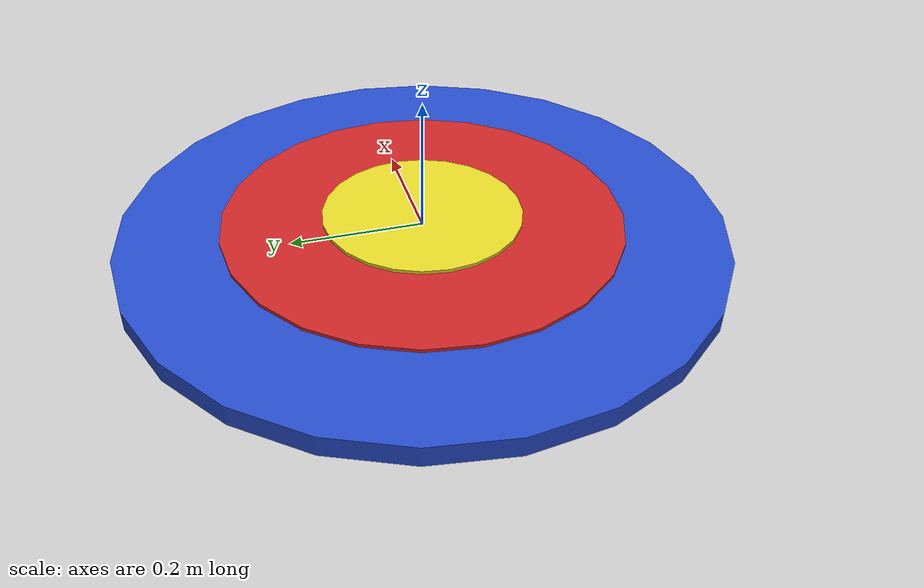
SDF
<?xml version="1.0" ?>
<sdf version="1.5">
  <model name="Target">
    <static>true</static>
    <link name="Yellow">
      <pose>0 0 0 0 0 0</pose>
      <visual name="visual">
        <geometry>
          <cylinder>
              <radius>0.15</radius>
              <length>.05</length>
          </cylinder>
        </geometry>
        <material>
          <script>
            <uri>file://media/materials/scripts/gazebo.material</uri>
            <name>Gazebo/Yellow</name>
          </script>
          <ambient>1 1 1 1</ambient>
        </material>
        <cast_shadows>0</cast_shadows>
        <transparency>0</transparency>
      </visual>
    </link>
    <link name="Red">
      <pose>0 0 0 0 0 0</pose>
      <visual name="visual">
        <geometry>
          <cylinder>
              <radius>0.3</radius>
              <length>.04</length>
          </cylinder>
        </geometry>
        <material>
          <script>
            <uri>file://media/materials/scripts/gazebo.material</uri>
            <name>Gazebo/Red</name>
          </script>
          <ambient>1 1 1 1</ambient>
        </material>
        <cast_shadows>0</cast_shadows>
        <transparency>0</transparency>
      </visual>
    </link>
    <link name="blue">
      <pose>0 0 0 0 0 0</pose>
      <visual name="visual">
        <geometry>
          <cylinder>
              <radius>0.45</radius>
              <length>.03</length>
          </cylinder>
        </geometry>
        <material>
          <script>
            <uri>file://media/materials/scripts/gazebo.material</uri>
            <name>Gazebo/Blue</name>
          </script>
          <ambient>1 1 1 1</ambient>
        </material>
        <cast_shadows>0</cast_shadows>
        <transparency>0</transparency>
      </visual>
    </link>
  </model>
</sdf>
